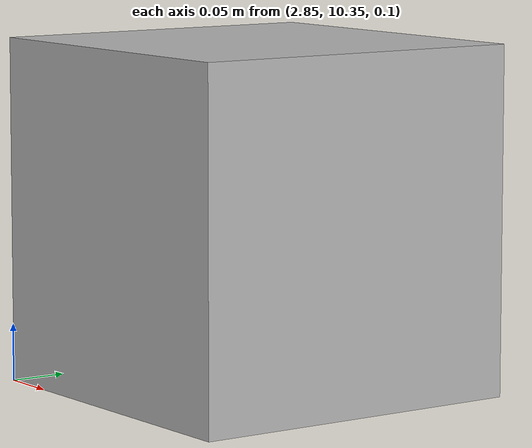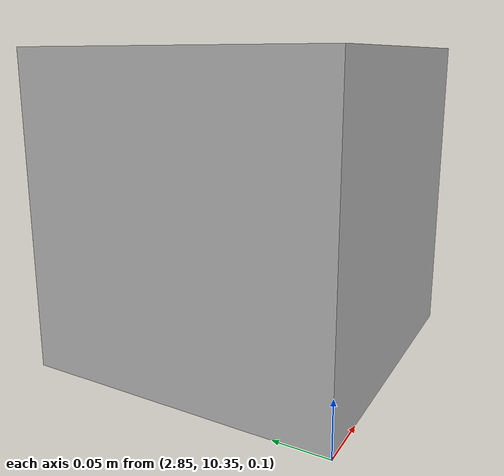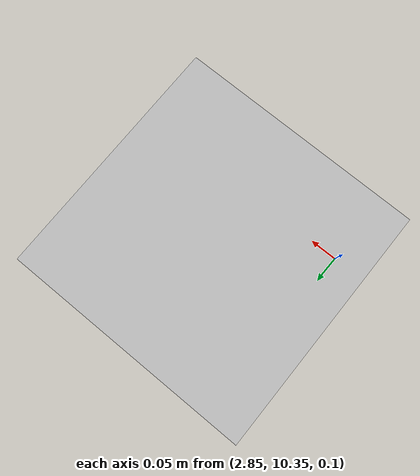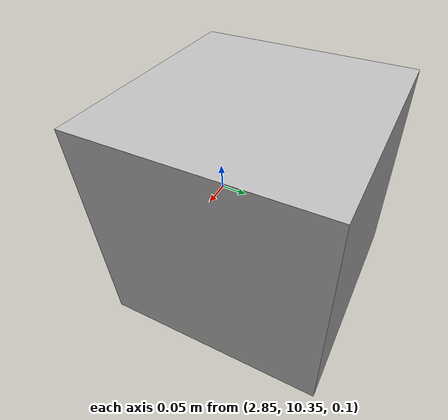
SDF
<?xml version="1.0"?>
<sdf version="1.5">
    <model name="2cube">
        <static>true</static>
        <link name="link">

             <collision name="collision2">
                <pose>3 10.5 0.1 0 0 0</pose>
                <geometry>
                    <mesh>
                        <uri>model://2cube/meshes/cube.dae</uri>
                    </mesh>
                </geometry>
            </collision>
            <visual name="visual2">

              <pose>3 10.5 0.1 0 0 0</pose>
              <geometry>
              <mesh>
                 <uri>model://2cube/meshes/cube_green.dae</uri>
              </mesh>
              </geometry>

              <material>
                  <script>
                      <uri>model://2cube/materials/scripts</uri>
                      <uri>model://2cube/materials/textures</uri>
                      <name>cubeMat/Diffuse</name>
                  </script>
              </material>
             </visual>

        </link>
    </model>
</sdf>
